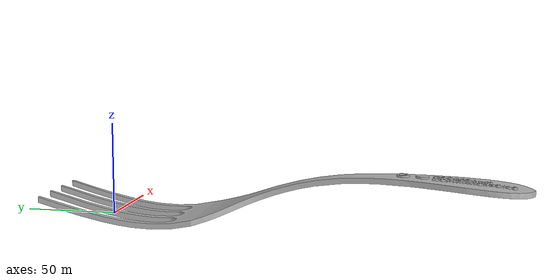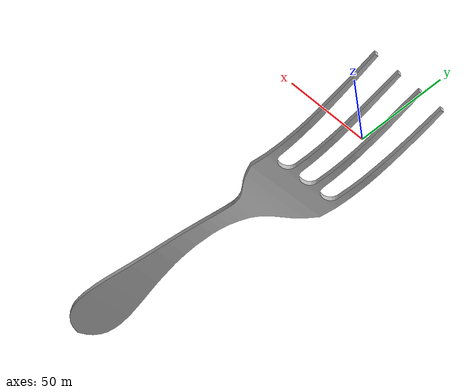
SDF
<sdf version="1.4">
    <model name="fork">
        <pose>3.000000 0.000000 1.000000 0.000000 -0.000000 0.000000</pose>
        <static>1</static>
        <link name="fork_link">
            <pose>0.000000 0.000000 0.000000 0.000000 -0.000000 0.000000</pose>

            <collision name="fork_collision">
                <pose>0.000000 0.000000 0.000000 0.000000 -0.000000 0.000000</pose>
                <geometry>
                    <mesh>
                        <uri>/home/furdek/catkin_ws/src/gazebo_pkg/models/fork/meshes/fork.stl</uri>
                        <scale>1 1 1</scale>
                    </mesh>
                </geometry>

            </collision>

            <visual name="fork_visual">
                <pose>0.000000 0.000000 0.000000 0.000000 -0.000000 0.000000</pose>
                <geometry>
                    <mesh>
                        <uri>/home/furdek/catkin_ws/src/gazebo_pkg/models/fork/meshes/fork.stl</uri>
                        <scale>1 1 1</scale>
                    </mesh>
                </geometry>
            </visual>
        </link>
    </model>
</sdf>
